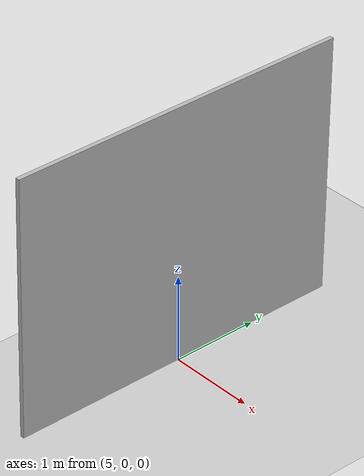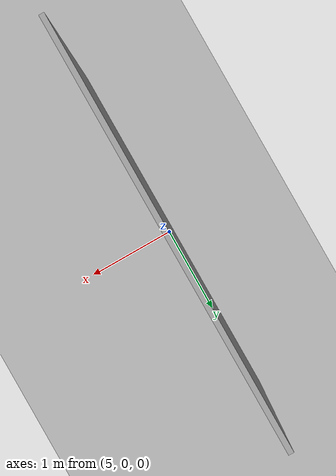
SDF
<?xml version="1.0" ?>
<sdf version="1.5">
  <world name="default">
    <!-- A global light source -->
    <include>
      <uri>model://sun</uri>
    </include>
    <!-- A ground plane -->
    <include>
      <uri>model://ground_plane</uri>
    </include>
    <include>
      <uri>model://asphalt_plane</uri>
    </include>
    <include>
      <uri>model://calibration_chessboard</uri>
      <pose>5 0 1.5 0 1.59 0</pose>
    </include>
    <physics name='default_physics' default='0' type='ode'>
      <gravity>0 0 -9.8066</gravity>
      <ode>
        <solver>
          <type>quick</type>
          <iters>10</iters>
          <sor>1.3</sor>
          <use_dynamic_moi_rescaling>0</use_dynamic_moi_rescaling>
        </solver>
        <constraints>
          <cfm>0</cfm>
          <erp>0.2</erp>
          <contact_max_correcting_vel>100</contact_max_correcting_vel>
          <contact_surface_layer>0.001</contact_surface_layer>
        </constraints>
      </ode>
      <max_step_size>0.004</max_step_size>
      <real_time_factor>1</real_time_factor>
      <real_time_update_rate>250</real_time_update_rate>
      <magnetic_field>6.0e-6 2.3e-5 -4.2e-5</magnetic_field>
    </physics>
  </world>
</sdf>

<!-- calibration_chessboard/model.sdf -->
<sdf version="1.5">
  <model name="calibration_board">
    <static>true</static>
    <link name="link">
      <collision name="collision">
        <geometry>
          <box>
            <size>3 3 0.05</size>
          </box>
        </geometry>
      </collision>
      <visual name="visual">
        <pose>0.0 0.0 0 0 0 0</pose>
        <cast_shadows>false</cast_shadows>
        <geometry>
          <box>
            <size>3 3.993506493 0.05</size>
          </box>
        </geometry>
        <material>
          <script>
            <uri>model://calibration_chessboard/materials/scripts</uri>
            <uri>model://calibration_chessboard/materials/textures</uri>
            <name>vrc/marker</name>
          </script>
        </material>
      </visual>
    </link>
  </model>
</sdf>
